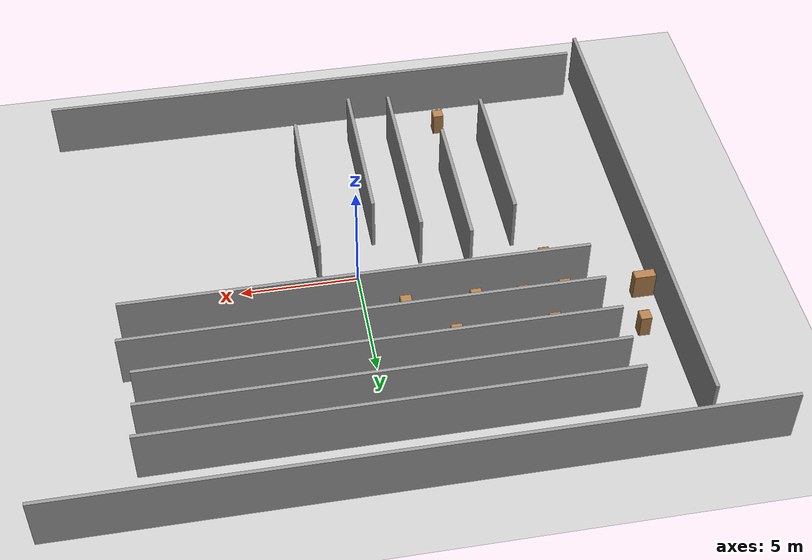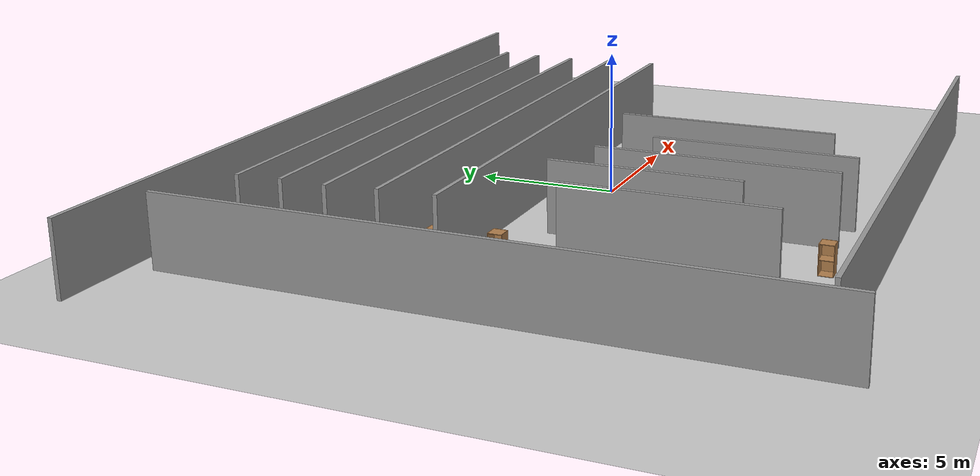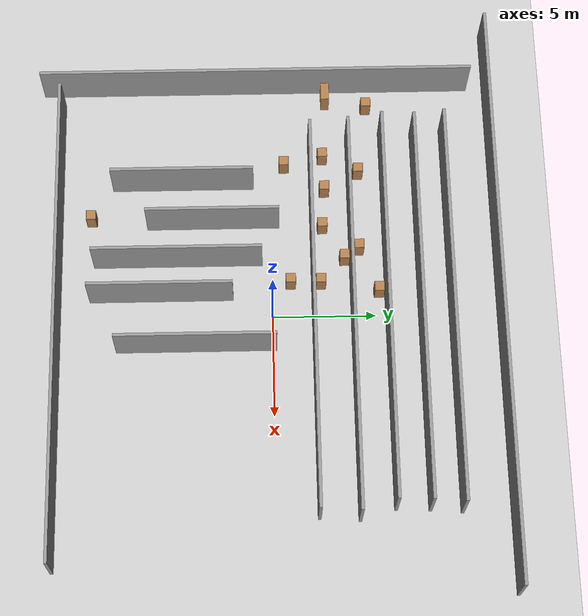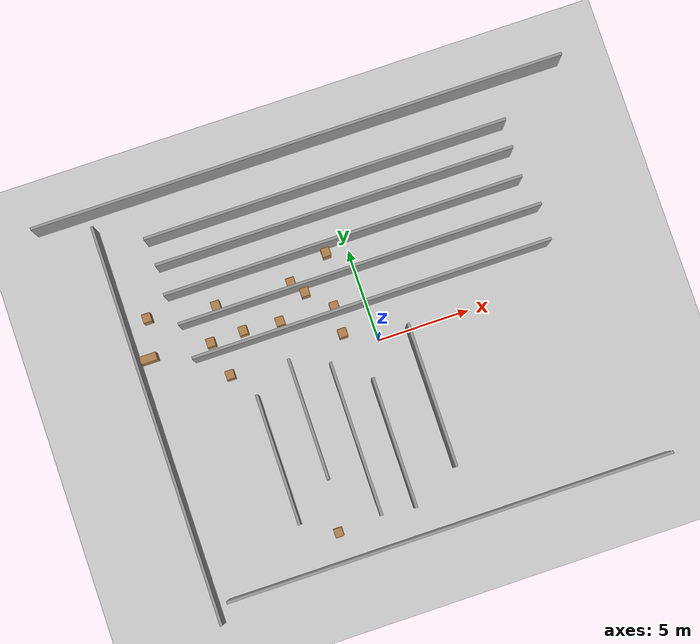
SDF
<sdf version="1.6">
 <world name="default">
  <model name="ground_plane">
   <static>1</static>
   <link name="link">
    <collision name="collision">
     <geometry><plane><normal>0 0 1</normal><size>100 100</size></plane></geometry>
     <surface><friction><ode><mu>100</mu><mu2>50</mu2></ode></friction></surface>
    </collision>
    <visual name="visual">
     <cast_shadows>0</cast_shadows>
     <geometry><plane><normal>0 0 1</normal><size>100 100</size></plane></geometry>
     <material>
      <script><uri>file://media/materials/scripts/gazebo.material</uri><name>Gazebo/Grey</name></script>
     </material>
    </visual>
   </link>
  </model>
  <model name="room18">
   <pose>-0.789818 -0.171226 0 0 -0 0</pose>
   <link name="Wall_0">
    <collision name="Wall_0_Collision">
     <geometry><box><size>29 0.15 2.5</size></box></geometry>
     <pose>0 0 1.25 0 -0 0</pose>
    </collision>
    <visual name="Wall_0_Visual">
     <pose>0 0 1.25 0 -0 0</pose>
     <geometry><box><size>29 0.15 2.5</size></box></geometry>
     <material>
      <script><uri>file://media/materials/scripts/gazebo.material</uri><name>Gazebo/Grey</name></script>
      <ambient>1 1 1 1</ambient>
     </material>
     <meta><layer>0</layer></meta>
    </visual>
    <pose>0 11.1538 0 0 -0 0</pose>
   </link>
   <link name="Wall_12">
    <collision name="Wall_12_Collision">
     <geometry><box><size>19.5 0.15 2.5</size></box></geometry>
     <pose>0 0 1.25 0 -0 0</pose>
    </collision>
    <visual name="Wall_12_Visual">
     <pose>0 0 1.25 0 -0 0</pose>
     <geometry><box><size>19.5 0.15 2.5</size></box></geometry>
     <material>
      <script><uri>file://media/materials/scripts/gazebo.material</uri><name>Gazebo/Grey</name></script>
      <ambient>1 1 1 1</ambient>
     </material>
     <meta><layer>0</layer></meta>
    </visual>
    <pose>0.703041 5.72736 0 0 -0 0</pose>
   </link>
   <link name="Wall_14">
    <collision name="Wall_14_Collision">
     <geometry><box><size>19.75 0.15 2.5</size></box></geometry>
     <pose>0 0 1.25 0 -0 0</pose>
    </collision>
    <visual name="Wall_14_Visual">
     <pose>0 0 1.25 0 -0 0</pose>
     <geometry><box><size>19.75 0.15 2.5</size></box></geometry>
     <material>
      <script><uri>file://media/materials/scripts/gazebo.material</uri><name>Gazebo/Grey</name></script>
      <ambient>1 1 1 1</ambient>
     </material>
     <meta><layer>0</layer></meta>
    </visual>
    <pose>1.06744 4.05155 0 0 -0 0</pose>
   </link>
   <link name="Wall_16">
    <collision name="Wall_16_Collision">
     <geometry><box><size>19.5 0.15 2.5</size></box></geometry>
     <pose>0 0 1.25 0 -0 0</pose>
    </collision>
    <visual name="Wall_16_Visual">
     <pose>0 0 1.25 0 -0 0</pose>
     <geometry><box><size>19.5 0.15 2.5</size></box></geometry>
     <material>
      <script><uri>file://media/materials/scripts/gazebo.material</uri><name>Gazebo/Grey</name></script>
      <ambient>1 1 1 1</ambient>
     </material>
     <meta><layer>0</layer></meta>
    </visual>
    <pose>1.07544 2.16294 0 0 -0 0</pose>
   </link>
   <link name="Wall_18">
    <collision name="Wall_18_Collision">
     <geometry><box><size>7 0.15 2.5</size></box></geometry>
     <pose>0 0 1.25 0 -0 0</pose>
    </collision>
    <visual name="Wall_18_Visual">
     <pose>0 0 1.25 0 -0 0</pose>
     <geometry><box><size>7 0.15 2.5</size></box></geometry>
     <material>
      <script><uri>file://media/materials/scripts/gazebo.material</uri><name>Gazebo/Grey</name></script>
      <ambient>1 1 1 1</ambient>
     </material>
     <meta><layer>0</layer></meta>
    </visual>
    <pose>-6.12574 -4.16148 0 0 -0 -1.5708</pose>
   </link>
   <link name="Wall_20">
    <collision name="Wall_20_Collision">
     <geometry><box><size>6.5 0.15 2.5</size></box></geometry>
     <pose>0 0 1.25 0 -0 0</pose>
    </collision>
    <visual name="Wall_20_Visual">
     <pose>0 0 1.25 0 -0 0</pose>
     <geometry><box><size>6.5 0.15 2.5</size></box></geometry>
     <material>
      <script><uri>file://media/materials/scripts/gazebo.material</uri><name>Gazebo/Grey</name></script>
      <ambient>1 1 1 1</ambient>
     </material>
     <meta><layer>0</layer></meta>
    </visual>
    <pose>-3.99772 -2.68788 0 0 -0 -1.5708</pose>
   </link>
   <link name="Wall_22">
    <collision name="Wall_22_Collision">
     <geometry><box><size>8.25 0.15 2.5</size></box></geometry>
     <pose>0 0 1.25 0 -0 0</pose>
    </collision>
    <visual name="Wall_22_Visual">
     <pose>0 0 1.25 0 -0 0</pose>
     <geometry><box><size>8.25 0.15 2.5</size></box></geometry>
     <material>
      <script><uri>file://media/materials/scripts/gazebo.material</uri><name>Gazebo/Grey</name></script>
      <ambient>1 1 1 1</ambient>
     </material>
     <meta><layer>0</layer></meta>
    </visual>
    <pose>-2.00271 -4.41408 0 0 -0 -1.5708</pose>
   </link>
   <link name="Wall_24">
    <collision name="Wall_24_Collision">
     <geometry><box><size>7 0.15 2.5</size></box></geometry>
     <pose>0 0 1.25 0 -0 0</pose>
    </collision>
    <visual name="Wall_24_Visual">
     <pose>0 0 1.25 0 -0 0</pose>
     <geometry><box><size>7 0.15 2.5</size></box></geometry>
     <material>
      <script><uri>file://media/materials/scripts/gazebo.material</uri><name>Gazebo/Grey</name></script>
      <ambient>1 1 1 1</ambient>
     </material>
     <meta><layer>0</layer></meta>
    </visual>
    <pose>-0.193893 -5.22549 0 0 -0 -1.5708</pose>
   </link>
   <link name="Wall_26">
    <collision name="Wall_26_Collision">
     <geometry><box><size>7.75 0.15 2.5</size></box></geometry>
     <pose>0 0 1.25 0 -0 0</pose>
    </collision>
    <visual name="Wall_26_Visual">
     <pose>0 0 1.25 0 -0 0</pose>
     <geometry><box><size>7.75 0.15 2.5</size></box></geometry>
     <material>
      <script><uri>file://media/materials/scripts/gazebo.material</uri><name>Gazebo/Grey</name></script>
      <ambient>1 1 1 1</ambient>
     </material>
     <meta><layer>0</layer></meta>
    </visual>
    <pose>2.41293 -3.52568 0 0 -0 -1.5708</pose>
   </link>
   <link name="Wall_3">
    <collision name="Wall_3_Collision">
     <geometry><box><size>21.5 0.15 2.5</size></box></geometry>
     <pose>0 0 1.25 0 -0 0</pose>
    </collision>
    <visual name="Wall_3_Visual">
     <pose>0 0 1.25 0 -0 0</pose>
     <geometry><box><size>21.5 0.15 2.5</size></box></geometry>
     <material>
      <script><uri>file://media/materials/scripts/gazebo.material</uri><name>Gazebo/Grey</name></script>
      <ambient>1 1 1 1</ambient>
     </material>
     <meta><layer>0</layer></meta>
    </visual>
    <pose>-11.4724 -0.478803 0 0 -0 -1.5708</pose>
   </link>
   <link name="Wall_5">
    <collision name="Wall_5_Collision">
     <geometry><box><size>24 0.15 2.5</size></box></geometry>
     <pose>0 0 1.25 0 -0 0</pose>
    </collision>
    <visual name="Wall_5_Visual">
     <pose>0 0 1.25 0 -0 0</pose>
     <geometry><box><size>24 0.15 2.5</size></box></geometry>
     <material>
      <script><uri>file://media/materials/scripts/gazebo.material</uri><name>Gazebo/Grey</name></script>
      <ambient>1 1 1 1</ambient>
     </material>
     <meta><layer>0</layer></meta>
    </visual>
    <pose>1.14423 -10.2062 0 0 -0 0</pose>
   </link>
   <link name="Wall_7">
    <collision name="Wall_7_Collision">
     <geometry><box><size>19.75 0.15 2.5</size></box></geometry>
     <pose>0 0 1.25 0 -0 0</pose>
    </collision>
    <visual name="Wall_7_Visual">
     <pose>0 0 1.25 0 -0 0</pose>
     <geometry><box><size>19.75 0.15 2.5</size></box></geometry>
     <material>
      <script><uri>file://media/materials/scripts/gazebo.material</uri><name>Gazebo/Grey</name></script>
      <ambient>1 1 1 1</ambient>
     </material>
     <meta><layer>0</layer></meta>
    </visual>
    <pose>0.74824 8.81299 0 0 -0 0</pose>
   </link>
   <link name="Wall_9">
    <collision name="Wall_9_Collision">
     <geometry><box><size>19.5 0.15 2.5</size></box></geometry>
     <pose>0 0 1.25 0 -0 0</pose>
    </collision>
    <visual name="Wall_9_Visual">
     <pose>0 0 1.25 0 -0 0</pose>
     <geometry><box><size>19.5 0.15 2.5</size></box></geometry>
     <material>
      <script><uri>file://media/materials/scripts/gazebo.material</uri><name>Gazebo/Grey</name></script>
      <ambient>1 1 1 1</ambient>
     </material>
     <meta><layer>0</layer></meta>
    </visual>
    <pose>0.756241 7.32338 0 0 -0 0</pose>
   </link>
   <static>1</static>
  </model>
  <model name="cabinet_28">
   <static>1</static>
   <link name="cabinet_bottom_plate">
    <inertial>
     <pose>0 0 -1 0 -0 0</pose>
     <inertia><ixx>2.05</ixx><ixy>0</ixy><ixz>0</ixz><iyy>2.05</iyy><iyz>0</iyz><izz>2.05</izz></inertia>
     <mass>25</mass>
    </inertial>
    <collision name="cabinet_bottom_plate_geom">
     <pose>0 0 0.01 0 -0 0</pose>
     <geometry><box><size>0.45 0.45 0.02</size></box></geometry>
    </collision>
    <visual name="cabinet_bottom_plate_geom_visual">
     <pose>0 0 0.01 0 -0 0</pose>
     <geometry><box><size>0.45 0.45 0.02</size></box></geometry>
     <material>
      <script><uri>file://media/materials/scripts/gazebo.material</uri><name>Gazebo/Wood</name></script>
     </material>
    </visual>
    <collision name="cabinet_bottom_plate_geom_cabinet_back_plate">
     <pose>0.235 0 0.51 0 -0 0</pose>
     <geometry><box><size>0.02 0.45 1.02</size></box></geometry>
    </collision>
    <visual name="cabinet_bottom_plate_geom_cabinet_back_plate_visual">
     <pose>0.235 0 0.51 0 -0 0</pose>
     <geometry><box><size>0.02 0.45 1.02</size></box></geometry>
     <material>
      <script><uri>file://media/materials/scripts/gazebo.material</uri><name>Gazebo/Wood</name></script>
     </material>
    </visual>
    <collision name="cabinet_bottom_plate_geom_cabinet_left_plate">
     <pose>0 0.235 0.51 0 -0 0</pose>
     <geometry><box><size>0.45 0.02 1.02</size></box></geometry>
    </collision>
    <visual name="cabinet_bottom_plate_geom_cabinet_left_plate_visual">
     <pose>0 0.235 0.51 0 -0 0</pose>
     <geometry><box><size>0.45 0.02 1.02</size></box></geometry>
     <material>
      <script><uri>file://media/materials/scripts/gazebo.material</uri><name>Gazebo/Wood</name></script>
     </material>
    </visual>
    <collision name="cabinet_bottom_plate_geom_cabinet_middle_plate">
     <pose>0 0 0.51 0 -0 0</pose>
     <geometry><box><size>0.45 0.45 0.02</size></box></geometry>
    </collision>
    <visual name="cabinet_bottom_plate_geom_cabinet_middle_plate_visual">
     <pose>0 0 0.51 0 -0 0</pose>
     <geometry><box><size>0.45 0.45 0.02</size></box></geometry>
     <material>
      <script><uri>file://media/materials/scripts/gazebo.material</uri><name>Gazebo/Wood</name></script>
     </material>
    </visual>
    <collision name="cabinet_bottom_plate_geom_cabinet_right_plate">
     <pose>0 -0.235 0.51 0 -0 0</pose>
     <geometry><box><size>0.45 0.02 1.02</size></box></geometry>
    </collision>
    <visual name="cabinet_bottom_plate_geom_cabinet_right_plate_visual">
     <pose>0 -0.235 0.51 0 -0 0</pose>
     <geometry><box><size>0.45 0.02 1.02</size></box></geometry>
     <material>
      <script><uri>file://media/materials/scripts/gazebo.material</uri><name>Gazebo/Wood</name></script>
     </material>
    </visual>
    <collision name="cabinet_bottom_plate_geom_cabinet_top_plate">
     <pose>0 0 1.01 0 -0 0</pose>
     <geometry><box><size>0.45 0.45 0.02</size></box></geometry>
    </collision>
    <visual name="cabinet_bottom_plate_geom_cabinet_top_plate_visual">
     <pose>0 0 1.01 0 -0 0</pose>
     <geometry><box><size>0.45 0.45 0.02</size></box></geometry>
     <material>
      <script><uri>file://media/materials/scripts/gazebo.material</uri><name>Gazebo/Wood</name></script>
     </material>
    </visual>
   </link>
   <pose>-1.18144 5.19767 0 0 -0 0</pose>
  </model>
  <model name="cabinet_29">
   <static>1</static>
   <link name="cabinet_bottom_plate">
    <inertial>
     <pose>0 0 -1 0 -0 0</pose>
     <inertia><ixx>2.05</ixx><ixy>0</ixy><ixz>0</ixz><iyy>2.05</iyy><iyz>0</iyz><izz>2.05</izz></inertia>
     <mass>25</mass>
    </inertial>
    <collision name="cabinet_bottom_plate_geom">
     <pose>0 0 0.01 0 -0 0</pose>
     <geometry><box><size>0.45 0.45 0.02</size></box></geometry>
    </collision>
    <visual name="cabinet_bottom_plate_geom_visual">
     <pose>0 0 0.01 0 -0 0</pose>
     <geometry><box><size>0.45 0.45 0.02</size></box></geometry>
     <material>
      <script><uri>file://media/materials/scripts/gazebo.material</uri><name>Gazebo/Wood</name></script>
     </material>
    </visual>
    <collision name="cabinet_bottom_plate_geom_cabinet_back_plate">
     <pose>0.235 0 0.51 0 -0 0</pose>
     <geometry><box><size>0.02 0.45 1.02</size></box></geometry>
    </collision>
    <visual name="cabinet_bottom_plate_geom_cabinet_back_plate_visual">
     <pose>0.235 0 0.51 0 -0 0</pose>
     <geometry><box><size>0.02 0.45 1.02</size></box></geometry>
     <material>
      <script><uri>file://media/materials/scripts/gazebo.material</uri><name>Gazebo/Wood</name></script>
     </material>
    </visual>
    <collision name="cabinet_bottom_plate_geom_cabinet_left_plate">
     <pose>0 0.235 0.51 0 -0 0</pose>
     <geometry><box><size>0.45 0.02 1.02</size></box></geometry>
    </collision>
    <visual name="cabinet_bottom_plate_geom_cabinet_left_plate_visual">
     <pose>0 0.235 0.51 0 -0 0</pose>
     <geometry><box><size>0.45 0.02 1.02</size></box></geometry>
     <material>
      <script><uri>file://media/materials/scripts/gazebo.material</uri><name>Gazebo/Wood</name></script>
     </material>
    </visual>
    <collision name="cabinet_bottom_plate_geom_cabinet_middle_plate">
     <pose>0 0 0.51 0 -0 0</pose>
     <geometry><box><size>0.45 0.45 0.02</size></box></geometry>
    </collision>
    <visual name="cabinet_bottom_plate_geom_cabinet_middle_plate_visual">
     <pose>0 0 0.51 0 -0 0</pose>
     <geometry><box><size>0.45 0.45 0.02</size></box></geometry>
     <material>
      <script><uri>file://media/materials/scripts/gazebo.material</uri><name>Gazebo/Wood</name></script>
     </material>
    </visual>
    <collision name="cabinet_bottom_plate_geom_cabinet_right_plate">
     <pose>0 -0.235 0.51 0 -0 0</pose>
     <geometry><box><size>0.45 0.02 1.02</size></box></geometry>
    </collision>
    <visual name="cabinet_bottom_plate_geom_cabinet_right_plate_visual">
     <pose>0 -0.235 0.51 0 -0 0</pose>
     <geometry><box><size>0.45 0.02 1.02</size></box></geometry>
     <material>
      <script><uri>file://media/materials/scripts/gazebo.material</uri><name>Gazebo/Wood</name></script>
     </material>
    </visual>
    <collision name="cabinet_bottom_plate_geom_cabinet_top_plate">
     <pose>0 0 1.01 0 -0 0</pose>
     <geometry><box><size>0.45 0.45 0.02</size></box></geometry>
    </collision>
    <visual name="cabinet_bottom_plate_geom_cabinet_top_plate_visual">
     <pose>0 0 1.01 0 -0 0</pose>
     <geometry><box><size>0.45 0.45 0.02</size></box></geometry>
     <material>
      <script><uri>file://media/materials/scripts/gazebo.material</uri><name>Gazebo/Wood</name></script>
     </material>
    </visual>
   </link>
   <pose>-3.42618 4.28544 0 0 -0 0</pose>
  </model>
  <model name="cabinet_31">
   <static>1</static>
   <link name="cabinet_bottom_plate">
    <inertial>
     <pose>0 0 -1 0 -0 0</pose>
     <inertia><ixx>2.05</ixx><ixy>0</ixy><ixz>0</ixz><iyy>2.05</iyy><iyz>0</iyz><izz>2.05</izz></inertia>
     <mass>25</mass>
    </inertial>
    <collision name="cabinet_bottom_plate_geom">
     <pose>0 0 0.01 0 -0 0</pose>
     <geometry><box><size>0.45 0.45 0.02</size></box></geometry>
    </collision>
    <visual name="cabinet_bottom_plate_geom_visual">
     <pose>0 0 0.01 0 -0 0</pose>
     <geometry><box><size>0.45 0.45 0.02</size></box></geometry>
     <material>
      <script><uri>file://media/materials/scripts/gazebo.material</uri><name>Gazebo/Wood</name></script>
     </material>
    </visual>
    <collision name="cabinet_bottom_plate_geom_cabinet_back_plate">
     <pose>0.235 0 0.51 0 -0 0</pose>
     <geometry><box><size>0.02 0.45 1.02</size></box></geometry>
    </collision>
    <visual name="cabinet_bottom_plate_geom_cabinet_back_plate_visual">
     <pose>0.235 0 0.51 0 -0 0</pose>
     <geometry><box><size>0.02 0.45 1.02</size></box></geometry>
     <material>
      <script><uri>file://media/materials/scripts/gazebo.material</uri><name>Gazebo/Wood</name></script>
     </material>
    </visual>
    <collision name="cabinet_bottom_plate_geom_cabinet_left_plate">
     <pose>0 0.235 0.51 0 -0 0</pose>
     <geometry><box><size>0.45 0.02 1.02</size></box></geometry>
    </collision>
    <visual name="cabinet_bottom_plate_geom_cabinet_left_plate_visual">
     <pose>0 0.235 0.51 0 -0 0</pose>
     <geometry><box><size>0.45 0.02 1.02</size></box></geometry>
     <material>
      <script><uri>file://media/materials/scripts/gazebo.material</uri><name>Gazebo/Wood</name></script>
     </material>
    </visual>
    <collision name="cabinet_bottom_plate_geom_cabinet_middle_plate">
     <pose>0 0 0.51 0 -0 0</pose>
     <geometry><box><size>0.45 0.45 0.02</size></box></geometry>
    </collision>
    <visual name="cabinet_bottom_plate_geom_cabinet_middle_plate_visual">
     <pose>0 0 0.51 0 -0 0</pose>
     <geometry><box><size>0.45 0.45 0.02</size></box></geometry>
     <material>
      <script><uri>file://media/materials/scripts/gazebo.material</uri><name>Gazebo/Wood</name></script>
     </material>
    </visual>
    <collision name="cabinet_bottom_plate_geom_cabinet_right_plate">
     <pose>0 -0.235 0.51 0 -0 0</pose>
     <geometry><box><size>0.45 0.02 1.02</size></box></geometry>
    </collision>
    <visual name="cabinet_bottom_plate_geom_cabinet_right_plate_visual">
     <pose>0 -0.235 0.51 0 -0 0</pose>
     <geometry><box><size>0.45 0.02 1.02</size></box></geometry>
     <material>
      <script><uri>file://media/materials/scripts/gazebo.material</uri><name>Gazebo/Wood</name></script>
     </material>
    </visual>
    <collision name="cabinet_bottom_plate_geom_cabinet_top_plate">
     <pose>0 0 1.01 0 -0 0</pose>
     <geometry><box><size>0.45 0.45 0.02</size></box></geometry>
    </collision>
    <visual name="cabinet_bottom_plate_geom_cabinet_top_plate_visual">
     <pose>0 0 1.01 0 -0 0</pose>
     <geometry><box><size>0.45 0.45 0.02</size></box></geometry>
     <material>
      <script><uri>file://media/materials/scripts/gazebo.material</uri><name>Gazebo/Wood</name></script>
     </material>
    </visual>
   </link>
   <pose>-7.52093 4.36774 0 0 -0 0</pose>
  </model>
  <model name="cabinet_37">
   <static>1</static>
   <link name="cabinet_bottom_plate">
    <inertial>
     <pose>0 0 -1 0 -0 0</pose>
     <inertia><ixx>2.05</ixx><ixy>0</ixy><ixz>0</ixz><iyy>2.05</iyy><iyz>0</iyz><izz>2.05</izz></inertia>
     <mass>25</mass>
    </inertial>
    <collision name="cabinet_bottom_plate_geom">
     <pose>0 0 0.01 0 -0 0</pose>
     <geometry><box><size>0.45 0.45 0.02</size></box></geometry>
    </collision>
    <visual name="cabinet_bottom_plate_geom_visual">
     <pose>0 0 0.01 0 -0 0</pose>
     <geometry><box><size>0.45 0.45 0.02</size></box></geometry>
     <material>
      <script><uri>file://media/materials/scripts/gazebo.material</uri><name>Gazebo/Wood</name></script>
     </material>
    </visual>
    <collision name="cabinet_bottom_plate_geom_cabinet_back_plate">
     <pose>0.235 0 0.51 0 -0 0</pose>
     <geometry><box><size>0.02 0.45 1.02</size></box></geometry>
    </collision>
    <visual name="cabinet_bottom_plate_geom_cabinet_back_plate_visual">
     <pose>0.235 0 0.51 0 -0 0</pose>
     <geometry><box><size>0.02 0.45 1.02</size></box></geometry>
     <material>
      <script><uri>file://media/materials/scripts/gazebo.material</uri><name>Gazebo/Wood</name></script>
     </material>
    </visual>
    <collision name="cabinet_bottom_plate_geom_cabinet_left_plate">
     <pose>0 0.235 0.51 0 -0 0</pose>
     <geometry><box><size>0.45 0.02 1.02</size></box></geometry>
    </collision>
    <visual name="cabinet_bottom_plate_geom_cabinet_left_plate_visual">
     <pose>0 0.235 0.51 0 -0 0</pose>
     <geometry><box><size>0.45 0.02 1.02</size></box></geometry>
     <material>
      <script><uri>file://media/materials/scripts/gazebo.material</uri><name>Gazebo/Wood</name></script>
     </material>
    </visual>
    <collision name="cabinet_bottom_plate_geom_cabinet_middle_plate">
     <pose>0 0 0.51 0 -0 0</pose>
     <geometry><box><size>0.45 0.45 0.02</size></box></geometry>
    </collision>
    <visual name="cabinet_bottom_plate_geom_cabinet_middle_plate_visual">
     <pose>0 0 0.51 0 -0 0</pose>
     <geometry><box><size>0.45 0.45 0.02</size></box></geometry>
     <material>
      <script><uri>file://media/materials/scripts/gazebo.material</uri><name>Gazebo/Wood</name></script>
     </material>
    </visual>
    <collision name="cabinet_bottom_plate_geom_cabinet_right_plate">
     <pose>0 -0.235 0.51 0 -0 0</pose>
     <geometry><box><size>0.45 0.02 1.02</size></box></geometry>
    </collision>
    <visual name="cabinet_bottom_plate_geom_cabinet_right_plate_visual">
     <pose>0 -0.235 0.51 0 -0 0</pose>
     <geometry><box><size>0.45 0.02 1.02</size></box></geometry>
     <material>
      <script><uri>file://media/materials/scripts/gazebo.material</uri><name>Gazebo/Wood</name></script>
     </material>
    </visual>
    <collision name="cabinet_bottom_plate_geom_cabinet_top_plate">
     <pose>0 0 1.01 0 -0 0</pose>
     <geometry><box><size>0.45 0.45 0.02</size></box></geometry>
    </collision>
    <visual name="cabinet_bottom_plate_geom_cabinet_top_plate_visual">
     <pose>0 0 1.01 0 -0 0</pose>
     <geometry><box><size>0.45 0.45 0.02</size></box></geometry>
     <material>
      <script><uri>file://media/materials/scripts/gazebo.material</uri><name>Gazebo/Wood</name></script>
     </material>
    </visual>
   </link>
   <pose>-1.65894 2.37493 0 0 -0 0</pose>
  </model>
  <model name="cabinet_38">
   <static>1</static>
   <link name="cabinet_bottom_plate">
    <inertial>
     <pose>0 0 -1 0 -0 0</pose>
     <inertia><ixx>2.05</ixx><ixy>0</ixy><ixz>0</ixz><iyy>2.05</iyy><iyz>0</iyz><izz>2.05</izz></inertia>
     <mass>25</mass>
    </inertial>
    <collision name="cabinet_bottom_plate_geom">
     <pose>0 0 0.01 0 -0 0</pose>
     <geometry><box><size>0.45 0.45 0.02</size></box></geometry>
    </collision>
    <visual name="cabinet_bottom_plate_geom_visual">
     <pose>0 0 0.01 0 -0 0</pose>
     <geometry><box><size>0.45 0.45 0.02</size></box></geometry>
     <material>
      <script><uri>file://media/materials/scripts/gazebo.material</uri><name>Gazebo/Wood</name></script>
     </material>
    </visual>
    <collision name="cabinet_bottom_plate_geom_cabinet_back_plate">
     <pose>0.235 0 0.51 0 -0 0</pose>
     <geometry><box><size>0.02 0.45 1.02</size></box></geometry>
    </collision>
    <visual name="cabinet_bottom_plate_geom_cabinet_back_plate_visual">
     <pose>0.235 0 0.51 0 -0 0</pose>
     <geometry><box><size>0.02 0.45 1.02</size></box></geometry>
     <material>
      <script><uri>file://media/materials/scripts/gazebo.material</uri><name>Gazebo/Wood</name></script>
     </material>
    </visual>
    <collision name="cabinet_bottom_plate_geom_cabinet_left_plate">
     <pose>0 0.235 0.51 0 -0 0</pose>
     <geometry><box><size>0.45 0.02 1.02</size></box></geometry>
    </collision>
    <visual name="cabinet_bottom_plate_geom_cabinet_left_plate_visual">
     <pose>0 0.235 0.51 0 -0 0</pose>
     <geometry><box><size>0.45 0.02 1.02</size></box></geometry>
     <material>
      <script><uri>file://media/materials/scripts/gazebo.material</uri><name>Gazebo/Wood</name></script>
     </material>
    </visual>
    <collision name="cabinet_bottom_plate_geom_cabinet_middle_plate">
     <pose>0 0 0.51 0 -0 0</pose>
     <geometry><box><size>0.45 0.45 0.02</size></box></geometry>
    </collision>
    <visual name="cabinet_bottom_plate_geom_cabinet_middle_plate_visual">
     <pose>0 0 0.51 0 -0 0</pose>
     <geometry><box><size>0.45 0.45 0.02</size></box></geometry>
     <material>
      <script><uri>file://media/materials/scripts/gazebo.material</uri><name>Gazebo/Wood</name></script>
     </material>
    </visual>
    <collision name="cabinet_bottom_plate_geom_cabinet_right_plate">
     <pose>0 -0.235 0.51 0 -0 0</pose>
     <geometry><box><size>0.45 0.02 1.02</size></box></geometry>
    </collision>
    <visual name="cabinet_bottom_plate_geom_cabinet_right_plate_visual">
     <pose>0 -0.235 0.51 0 -0 0</pose>
     <geometry><box><size>0.45 0.02 1.02</size></box></geometry>
     <material>
      <script><uri>file://media/materials/scripts/gazebo.material</uri><name>Gazebo/Wood</name></script>
     </material>
    </visual>
    <collision name="cabinet_bottom_plate_geom_cabinet_top_plate">
     <pose>0 0 1.01 0 -0 0</pose>
     <geometry><box><size>0.45 0.45 0.02</size></box></geometry>
    </collision>
    <visual name="cabinet_bottom_plate_geom_cabinet_top_plate_visual">
     <pose>0 0 1.01 0 -0 0</pose>
     <geometry><box><size>0.45 0.45 0.02</size></box></geometry>
     <material>
      <script><uri>file://media/materials/scripts/gazebo.material</uri><name>Gazebo/Wood</name></script>
     </material>
    </visual>
   </link>
   <pose>-2.89348 3.56577 0 0 -0 0</pose>
  </model>
  <model name="cabinet_39">
   <static>1</static>
   <link name="cabinet_bottom_plate">
    <inertial>
     <pose>0 0 -1 0 -0 0</pose>
     <inertia><ixx>2.05</ixx><ixy>0</ixy><ixz>0</ixz><iyy>2.05</iyy><iyz>0</iyz><izz>2.05</izz></inertia>
     <mass>25</mass>
    </inertial>
    <collision name="cabinet_bottom_plate_geom">
     <pose>0 0 0.01 0 -0 0</pose>
     <geometry><box><size>0.45 0.45 0.02</size></box></geometry>
    </collision>
    <visual name="cabinet_bottom_plate_geom_visual">
     <pose>0 0 0.01 0 -0 0</pose>
     <geometry><box><size>0.45 0.45 0.02</size></box></geometry>
     <material>
      <script><uri>file://media/materials/scripts/gazebo.material</uri><name>Gazebo/Wood</name></script>
     </material>
    </visual>
    <collision name="cabinet_bottom_plate_geom_cabinet_back_plate">
     <pose>0.235 0 0.51 0 -0 0</pose>
     <geometry><box><size>0.02 0.45 1.02</size></box></geometry>
    </collision>
    <visual name="cabinet_bottom_plate_geom_cabinet_back_plate_visual">
     <pose>0.235 0 0.51 0 -0 0</pose>
     <geometry><box><size>0.02 0.45 1.02</size></box></geometry>
     <material>
      <script><uri>file://media/materials/scripts/gazebo.material</uri><name>Gazebo/Wood</name></script>
     </material>
    </visual>
    <collision name="cabinet_bottom_plate_geom_cabinet_left_plate">
     <pose>0 0.235 0.51 0 -0 0</pose>
     <geometry><box><size>0.45 0.02 1.02</size></box></geometry>
    </collision>
    <visual name="cabinet_bottom_plate_geom_cabinet_left_plate_visual">
     <pose>0 0.235 0.51 0 -0 0</pose>
     <geometry><box><size>0.45 0.02 1.02</size></box></geometry>
     <material>
      <script><uri>file://media/materials/scripts/gazebo.material</uri><name>Gazebo/Wood</name></script>
     </material>
    </visual>
    <collision name="cabinet_bottom_plate_geom_cabinet_middle_plate">
     <pose>0 0 0.51 0 -0 0</pose>
     <geometry><box><size>0.45 0.45 0.02</size></box></geometry>
    </collision>
    <visual name="cabinet_bottom_plate_geom_cabinet_middle_plate_visual">
     <pose>0 0 0.51 0 -0 0</pose>
     <geometry><box><size>0.45 0.45 0.02</size></box></geometry>
     <material>
      <script><uri>file://media/materials/scripts/gazebo.material</uri><name>Gazebo/Wood</name></script>
     </material>
    </visual>
    <collision name="cabinet_bottom_plate_geom_cabinet_right_plate">
     <pose>0 -0.235 0.51 0 -0 0</pose>
     <geometry><box><size>0.45 0.02 1.02</size></box></geometry>
    </collision>
    <visual name="cabinet_bottom_plate_geom_cabinet_right_plate_visual">
     <pose>0 -0.235 0.51 0 -0 0</pose>
     <geometry><box><size>0.45 0.02 1.02</size></box></geometry>
     <material>
      <script><uri>file://media/materials/scripts/gazebo.material</uri><name>Gazebo/Wood</name></script>
     </material>
    </visual>
    <collision name="cabinet_bottom_plate_geom_cabinet_top_plate">
     <pose>0 0 1.01 0 -0 0</pose>
     <geometry><box><size>0.45 0.45 0.02</size></box></geometry>
    </collision>
    <visual name="cabinet_bottom_plate_geom_cabinet_top_plate_visual">
     <pose>0 0 1.01 0 -0 0</pose>
     <geometry><box><size>0.45 0.45 0.02</size></box></geometry>
     <material>
      <script><uri>file://media/materials/scripts/gazebo.material</uri><name>Gazebo/Wood</name></script>
     </material>
    </visual>
   </link>
   <pose>-4.59943 2.52278 0 0 -0 0</pose>
  </model>
  <model name="cabinet_40">
   <static>1</static>
   <link name="cabinet_bottom_plate">
    <inertial>
     <pose>0 0 -1 0 -0 0</pose>
     <inertia><ixx>2.05</ixx><ixy>0</ixy><ixz>0</ixz><iyy>2.05</iyy><iyz>0</iyz><izz>2.05</izz></inertia>
     <mass>25</mass>
    </inertial>
    <collision name="cabinet_bottom_plate_geom">
     <pose>0 0 0.01 0 -0 0</pose>
     <geometry><box><size>0.45 0.45 0.02</size></box></geometry>
    </collision>
    <visual name="cabinet_bottom_plate_geom_visual">
     <pose>0 0 0.01 0 -0 0</pose>
     <geometry><box><size>0.45 0.45 0.02</size></box></geometry>
     <material>
      <script><uri>file://media/materials/scripts/gazebo.material</uri><name>Gazebo/Wood</name></script>
     </material>
    </visual>
    <collision name="cabinet_bottom_plate_geom_cabinet_back_plate">
     <pose>0.235 0 0.51 0 -0 0</pose>
     <geometry><box><size>0.02 0.45 1.02</size></box></geometry>
    </collision>
    <visual name="cabinet_bottom_plate_geom_cabinet_back_plate_visual">
     <pose>0.235 0 0.51 0 -0 0</pose>
     <geometry><box><size>0.02 0.45 1.02</size></box></geometry>
     <material>
      <script><uri>file://media/materials/scripts/gazebo.material</uri><name>Gazebo/Wood</name></script>
     </material>
    </visual>
    <collision name="cabinet_bottom_plate_geom_cabinet_left_plate">
     <pose>0 0.235 0.51 0 -0 0</pose>
     <geometry><box><size>0.45 0.02 1.02</size></box></geometry>
    </collision>
    <visual name="cabinet_bottom_plate_geom_cabinet_left_plate_visual">
     <pose>0 0.235 0.51 0 -0 0</pose>
     <geometry><box><size>0.45 0.02 1.02</size></box></geometry>
     <material>
      <script><uri>file://media/materials/scripts/gazebo.material</uri><name>Gazebo/Wood</name></script>
     </material>
    </visual>
    <collision name="cabinet_bottom_plate_geom_cabinet_middle_plate">
     <pose>0 0 0.51 0 -0 0</pose>
     <geometry><box><size>0.45 0.45 0.02</size></box></geometry>
    </collision>
    <visual name="cabinet_bottom_plate_geom_cabinet_middle_plate_visual">
     <pose>0 0 0.51 0 -0 0</pose>
     <geometry><box><size>0.45 0.45 0.02</size></box></geometry>
     <material>
      <script><uri>file://media/materials/scripts/gazebo.material</uri><name>Gazebo/Wood</name></script>
     </material>
    </visual>
    <collision name="cabinet_bottom_plate_geom_cabinet_right_plate">
     <pose>0 -0.235 0.51 0 -0 0</pose>
     <geometry><box><size>0.45 0.02 1.02</size></box></geometry>
    </collision>
    <visual name="cabinet_bottom_plate_geom_cabinet_right_plate_visual">
     <pose>0 -0.235 0.51 0 -0 0</pose>
     <geometry><box><size>0.45 0.02 1.02</size></box></geometry>
     <material>
      <script><uri>file://media/materials/scripts/gazebo.material</uri><name>Gazebo/Wood</name></script>
     </material>
    </visual>
    <collision name="cabinet_bottom_plate_geom_cabinet_top_plate">
     <pose>0 0 1.01 0 -0 0</pose>
     <geometry><box><size>0.45 0.45 0.02</size></box></geometry>
    </collision>
    <visual name="cabinet_bottom_plate_geom_cabinet_top_plate_visual">
     <pose>0 0 1.01 0 -0 0</pose>
     <geometry><box><size>0.45 0.45 0.02</size></box></geometry>
     <material>
      <script><uri>file://media/materials/scripts/gazebo.material</uri><name>Gazebo/Wood</name></script>
     </material>
    </visual>
   </link>
   <pose>-6.57979 2.66888 0 0 -0 0</pose>
  </model>
  <model name="cabinet_41">
   <static>1</static>
   <link name="cabinet_bottom_plate">
    <inertial>
     <pose>0 0 -1 0 -0 0</pose>
     <inertia><ixx>2.05</ixx><ixy>0</ixy><ixz>0</ixz><iyy>2.05</iyy><iyz>0</iyz><izz>2.05</izz></inertia>
     <mass>25</mass>
    </inertial>
    <collision name="cabinet_bottom_plate_geom">
     <pose>0 0 0.01 0 -0 0</pose>
     <geometry><box><size>0.45 0.45 0.02</size></box></geometry>
    </collision>
    <visual name="cabinet_bottom_plate_geom_visual">
     <pose>0 0 0.01 0 -0 0</pose>
     <geometry><box><size>0.45 0.45 0.02</size></box></geometry>
     <material>
      <script><uri>file://media/materials/scripts/gazebo.material</uri><name>Gazebo/Wood</name></script>
     </material>
    </visual>
    <collision name="cabinet_bottom_plate_geom_cabinet_back_plate">
     <pose>0.235 0 0.51 0 -0 0</pose>
     <geometry><box><size>0.02 0.45 1.02</size></box></geometry>
    </collision>
    <visual name="cabinet_bottom_plate_geom_cabinet_back_plate_visual">
     <pose>0.235 0 0.51 0 -0 0</pose>
     <geometry><box><size>0.02 0.45 1.02</size></box></geometry>
     <material>
      <script><uri>file://media/materials/scripts/gazebo.material</uri><name>Gazebo/Wood</name></script>
     </material>
    </visual>
    <collision name="cabinet_bottom_plate_geom_cabinet_left_plate">
     <pose>0 0.235 0.51 0 -0 0</pose>
     <geometry><box><size>0.45 0.02 1.02</size></box></geometry>
    </collision>
    <visual name="cabinet_bottom_plate_geom_cabinet_left_plate_visual">
     <pose>0 0.235 0.51 0 -0 0</pose>
     <geometry><box><size>0.45 0.02 1.02</size></box></geometry>
     <material>
      <script><uri>file://media/materials/scripts/gazebo.material</uri><name>Gazebo/Wood</name></script>
     </material>
    </visual>
    <collision name="cabinet_bottom_plate_geom_cabinet_middle_plate">
     <pose>0 0 0.51 0 -0 0</pose>
     <geometry><box><size>0.45 0.45 0.02</size></box></geometry>
    </collision>
    <visual name="cabinet_bottom_plate_geom_cabinet_middle_plate_visual">
     <pose>0 0 0.51 0 -0 0</pose>
     <geometry><box><size>0.45 0.45 0.02</size></box></geometry>
     <material>
      <script><uri>file://media/materials/scripts/gazebo.material</uri><name>Gazebo/Wood</name></script>
     </material>
    </visual>
    <collision name="cabinet_bottom_plate_geom_cabinet_right_plate">
     <pose>0 -0.235 0.51 0 -0 0</pose>
     <geometry><box><size>0.45 0.02 1.02</size></box></geometry>
    </collision>
    <visual name="cabinet_bottom_plate_geom_cabinet_right_plate_visual">
     <pose>0 -0.235 0.51 0 -0 0</pose>
     <geometry><box><size>0.45 0.02 1.02</size></box></geometry>
     <material>
      <script><uri>file://media/materials/scripts/gazebo.material</uri><name>Gazebo/Wood</name></script>
     </material>
    </visual>
    <collision name="cabinet_bottom_plate_geom_cabinet_top_plate">
     <pose>0 0 1.01 0 -0 0</pose>
     <geometry><box><size>0.45 0.45 0.02</size></box></geometry>
    </collision>
    <visual name="cabinet_bottom_plate_geom_cabinet_top_plate_visual">
     <pose>0 0 1.01 0 -0 0</pose>
     <geometry><box><size>0.45 0.45 0.02</size></box></geometry>
     <material>
      <script><uri>file://media/materials/scripts/gazebo.material</uri><name>Gazebo/Wood</name></script>
     </material>
    </visual>
   </link>
   <pose>-8.37072 2.61226 0 0 -0 0</pose>
  </model>
  <model name="cabinet_43">
   <static>1</static>
   <link name="cabinet_bottom_plate">
    <inertial>
     <pose>0 0 -1 0 -0 0</pose>
     <inertia><ixx>2.05</ixx><ixy>0</ixy><ixz>0</ixz><iyy>2.05</iyy><iyz>0</iyz><izz>2.05</izz></inertia>
     <mass>25</mass>
    </inertial>
    <collision name="cabinet_bottom_plate_geom">
     <pose>0 0 0.01 0 -0 0</pose>
     <geometry><box><size>0.45 0.45 0.02</size></box></geometry>
    </collision>
    <visual name="cabinet_bottom_plate_geom_visual">
     <pose>0 0 0.01 0 -0 0</pose>
     <geometry><box><size>0.45 0.45 0.02</size></box></geometry>
     <material>
      <script><uri>file://media/materials/scripts/gazebo.material</uri><name>Gazebo/Wood</name></script>
     </material>
    </visual>
    <collision name="cabinet_bottom_plate_geom_cabinet_back_plate">
     <pose>0.235 0 0.51 0 -0 0</pose>
     <geometry><box><size>0.02 0.45 1.02</size></box></geometry>
    </collision>
    <visual name="cabinet_bottom_plate_geom_cabinet_back_plate_visual">
     <pose>0.235 0 0.51 0 -0 0</pose>
     <geometry><box><size>0.02 0.45 1.02</size></box></geometry>
     <material>
      <script><uri>file://media/materials/scripts/gazebo.material</uri><name>Gazebo/Wood</name></script>
     </material>
    </visual>
    <collision name="cabinet_bottom_plate_geom_cabinet_left_plate">
     <pose>0 0.235 0.51 0 -0 0</pose>
     <geometry><box><size>0.45 0.02 1.02</size></box></geometry>
    </collision>
    <visual name="cabinet_bottom_plate_geom_cabinet_left_plate_visual">
     <pose>0 0.235 0.51 0 -0 0</pose>
     <geometry><box><size>0.45 0.02 1.02</size></box></geometry>
     <material>
      <script><uri>file://media/materials/scripts/gazebo.material</uri><name>Gazebo/Wood</name></script>
     </material>
    </visual>
    <collision name="cabinet_bottom_plate_geom_cabinet_middle_plate">
     <pose>0 0 0.51 0 -0 0</pose>
     <geometry><box><size>0.45 0.45 0.02</size></box></geometry>
    </collision>
    <visual name="cabinet_bottom_plate_geom_cabinet_middle_plate_visual">
     <pose>0 0 0.51 0 -0 0</pose>
     <geometry><box><size>0.45 0.45 0.02</size></box></geometry>
     <material>
      <script><uri>file://media/materials/scripts/gazebo.material</uri><name>Gazebo/Wood</name></script>
     </material>
    </visual>
    <collision name="cabinet_bottom_plate_geom_cabinet_right_plate">
     <pose>0 -0.235 0.51 0 -0 0</pose>
     <geometry><box><size>0.45 0.02 1.02</size></box></geometry>
    </collision>
    <visual name="cabinet_bottom_plate_geom_cabinet_right_plate_visual">
     <pose>0 -0.235 0.51 0 -0 0</pose>
     <geometry><box><size>0.45 0.02 1.02</size></box></geometry>
     <material>
      <script><uri>file://media/materials/scripts/gazebo.material</uri><name>Gazebo/Wood</name></script>
     </material>
    </visual>
    <collision name="cabinet_bottom_plate_geom_cabinet_top_plate">
     <pose>0 0 1.01 0 -0 0</pose>
     <geometry><box><size>0.45 0.45 0.02</size></box></geometry>
    </collision>
    <visual name="cabinet_bottom_plate_geom_cabinet_top_plate_visual">
     <pose>0 0 1.01 0 -0 0</pose>
     <geometry><box><size>0.45 0.45 0.02</size></box></geometry>
     <material>
      <script><uri>file://media/materials/scripts/gazebo.material</uri><name>Gazebo/Wood</name></script>
     </material>
    </visual>
   </link>
   <pose>-1.69026 0.906403 0 0 -0 0</pose>
  </model>
  <model name="cabinet_44">
   <static>1</static>
   <link name="cabinet_bottom_plate">
    <inertial>
     <pose>0 0 -1 0 -0 0</pose>
     <inertia><ixx>2.05</ixx><ixy>0</ixy><ixz>0</ixz><iyy>2.05</iyy><iyz>0</iyz><izz>2.05</izz></inertia>
     <mass>25</mass>
    </inertial>
    <collision name="cabinet_bottom_plate_geom">
     <pose>0 0 0.01 0 -0 0</pose>
     <geometry><box><size>0.45 0.45 0.02</size></box></geometry>
    </collision>
    <visual name="cabinet_bottom_plate_geom_visual">
     <pose>0 0 0.01 0 -0 0</pose>
     <geometry><box><size>0.45 0.45 0.02</size></box></geometry>
     <material>
      <script><uri>file://media/materials/scripts/gazebo.material</uri><name>Gazebo/Wood</name></script>
     </material>
    </visual>
    <collision name="cabinet_bottom_plate_geom_cabinet_back_plate">
     <pose>0.235 0 0.51 0 -0 0</pose>
     <geometry><box><size>0.02 0.45 1.02</size></box></geometry>
    </collision>
    <visual name="cabinet_bottom_plate_geom_cabinet_back_plate_visual">
     <pose>0.235 0 0.51 0 -0 0</pose>
     <geometry><box><size>0.02 0.45 1.02</size></box></geometry>
     <material>
      <script><uri>file://media/materials/scripts/gazebo.material</uri><name>Gazebo/Wood</name></script>
     </material>
    </visual>
    <collision name="cabinet_bottom_plate_geom_cabinet_left_plate">
     <pose>0 0.235 0.51 0 -0 0</pose>
     <geometry><box><size>0.45 0.02 1.02</size></box></geometry>
    </collision>
    <visual name="cabinet_bottom_plate_geom_cabinet_left_plate_visual">
     <pose>0 0.235 0.51 0 -0 0</pose>
     <geometry><box><size>0.45 0.02 1.02</size></box></geometry>
     <material>
      <script><uri>file://media/materials/scripts/gazebo.material</uri><name>Gazebo/Wood</name></script>
     </material>
    </visual>
    <collision name="cabinet_bottom_plate_geom_cabinet_middle_plate">
     <pose>0 0 0.51 0 -0 0</pose>
     <geometry><box><size>0.45 0.45 0.02</size></box></geometry>
    </collision>
    <visual name="cabinet_bottom_plate_geom_cabinet_middle_plate_visual">
     <pose>0 0 0.51 0 -0 0</pose>
     <geometry><box><size>0.45 0.45 0.02</size></box></geometry>
     <material>
      <script><uri>file://media/materials/scripts/gazebo.material</uri><name>Gazebo/Wood</name></script>
     </material>
    </visual>
    <collision name="cabinet_bottom_plate_geom_cabinet_right_plate">
     <pose>0 -0.235 0.51 0 -0 0</pose>
     <geometry><box><size>0.45 0.02 1.02</size></box></geometry>
    </collision>
    <visual name="cabinet_bottom_plate_geom_cabinet_right_plate_visual">
     <pose>0 -0.235 0.51 0 -0 0</pose>
     <geometry><box><size>0.45 0.02 1.02</size></box></geometry>
     <material>
      <script><uri>file://media/materials/scripts/gazebo.material</uri><name>Gazebo/Wood</name></script>
     </material>
    </visual>
    <collision name="cabinet_bottom_plate_geom_cabinet_top_plate">
     <pose>0 0 1.01 0 -0 0</pose>
     <geometry><box><size>0.45 0.45 0.02</size></box></geometry>
    </collision>
    <visual name="cabinet_bottom_plate_geom_cabinet_top_plate_visual">
     <pose>0 0 1.01 0 -0 0</pose>
     <geometry><box><size>0.45 0.45 0.02</size></box></geometry>
     <material>
      <script><uri>file://media/materials/scripts/gazebo.material</uri><name>Gazebo/Wood</name></script>
     </material>
    </visual>
   </link>
   <pose>-5.1661 -8.84451 0 0 -0 0</pose>
  </model>
  <model name="cabinet_45">
   <static>1</static>
   <link name="cabinet_bottom_plate">
    <inertial>
     <pose>0 0 -1 0 -0 0</pose>
     <inertia><ixx>2.05</ixx><ixy>0</ixy><ixz>0</ixz><iyy>2.05</iyy><iyz>0</iyz><izz>2.05</izz></inertia>
     <mass>25</mass>
    </inertial>
    <collision name="cabinet_bottom_plate_geom">
     <pose>0 0 0.01 0 -0 0</pose>
     <geometry><box><size>0.45 0.45 0.02</size></box></geometry>
    </collision>
    <visual name="cabinet_bottom_plate_geom_visual">
     <pose>0 0 0.01 0 -0 0</pose>
     <geometry><box><size>0.45 0.45 0.02</size></box></geometry>
     <material>
      <script><uri>file://media/materials/scripts/gazebo.material</uri><name>Gazebo/Wood</name></script>
     </material>
    </visual>
    <collision name="cabinet_bottom_plate_geom_cabinet_back_plate">
     <pose>0.235 0 0.51 0 -0 0</pose>
     <geometry><box><size>0.02 0.45 1.02</size></box></geometry>
    </collision>
    <visual name="cabinet_bottom_plate_geom_cabinet_back_plate_visual">
     <pose>0.235 0 0.51 0 -0 0</pose>
     <geometry><box><size>0.02 0.45 1.02</size></box></geometry>
     <material>
      <script><uri>file://media/materials/scripts/gazebo.material</uri><name>Gazebo/Wood</name></script>
     </material>
    </visual>
    <collision name="cabinet_bottom_plate_geom_cabinet_left_plate">
     <pose>0 0.235 0.51 0 -0 0</pose>
     <geometry><box><size>0.45 0.02 1.02</size></box></geometry>
    </collision>
    <visual name="cabinet_bottom_plate_geom_cabinet_left_plate_visual">
     <pose>0 0.235 0.51 0 -0 0</pose>
     <geometry><box><size>0.45 0.02 1.02</size></box></geometry>
     <material>
      <script><uri>file://media/materials/scripts/gazebo.material</uri><name>Gazebo/Wood</name></script>
     </material>
    </visual>
    <collision name="cabinet_bottom_plate_geom_cabinet_middle_plate">
     <pose>0 0 0.51 0 -0 0</pose>
     <geometry><box><size>0.45 0.45 0.02</size></box></geometry>
    </collision>
    <visual name="cabinet_bottom_plate_geom_cabinet_middle_plate_visual">
     <pose>0 0 0.51 0 -0 0</pose>
     <geometry><box><size>0.45 0.45 0.02</size></box></geometry>
     <material>
      <script><uri>file://media/materials/scripts/gazebo.material</uri><name>Gazebo/Wood</name></script>
     </material>
    </visual>
    <collision name="cabinet_bottom_plate_geom_cabinet_right_plate">
     <pose>0 -0.235 0.51 0 -0 0</pose>
     <geometry><box><size>0.45 0.02 1.02</size></box></geometry>
    </collision>
    <visual name="cabinet_bottom_plate_geom_cabinet_right_plate_visual">
     <pose>0 -0.235 0.51 0 -0 0</pose>
     <geometry><box><size>0.45 0.02 1.02</size></box></geometry>
     <material>
      <script><uri>file://media/materials/scripts/gazebo.material</uri><name>Gazebo/Wood</name></script>
     </material>
    </visual>
    <collision name="cabinet_bottom_plate_geom_cabinet_top_plate">
     <pose>0 0 1.01 0 -0 0</pose>
     <geometry><box><size>0.45 0.45 0.02</size></box></geometry>
    </collision>
    <visual name="cabinet_bottom_plate_geom_cabinet_top_plate_visual">
     <pose>0 0 1.01 0 -0 0</pose>
     <geometry><box><size>0.45 0.45 0.02</size></box></geometry>
     <material>
      <script><uri>file://media/materials/scripts/gazebo.material</uri><name>Gazebo/Wood</name></script>
     </material>
    </visual>
   </link>
   <pose>-7.94046 0.692599 0 0 -0 0</pose>
  </model>
  <model name="bookshelf_9">
   <static>1</static>
   <link name="link">
    <inertial><mass>1</mass></inertial>
    <collision name="back">
     <pose>0 0.005 0.6 0 -0 0</pose>
     <geometry><box><size>0.9 0.01 1.2</size></box></geometry>
    </collision>
    <visual name="visual1">
     <pose>0 0.005 0.6 0 -0 0</pose>
     <geometry><box><size>0.9 0.01 1.2</size></box></geometry>
     <material>
      <script><uri>file://media/materials/scripts/gazebo.material</uri><name>Gazebo/Wood</name></script>
     </material>
    </visual>
    <collision name="left_side">
     <pose>0.45 -0.195 0.6 0 -0 0</pose>
     <geometry><box><size>0.02 0.4 1.2</size></box></geometry>
    </collision>
    <visual name="visual2">
     <pose>0.45 -0.195 0.6 0 -0 0</pose>
     <geometry><box><size>0.02 0.4 1.2</size></box></geometry>
     <material>
      <script><uri>file://media/materials/scripts/gazebo.material</uri><name>Gazebo/Wood</name></script>
     </material>
    </visual>
    <collision name="right_side">
     <pose>-0.45 -0.195 0.6 0 -0 0</pose>
     <geometry><box><size>0.02 0.4 1.2</size></box></geometry>
    </collision>
    <visual name="visual3">
     <pose>-0.45 -0.195 0.6 0 -0 0</pose>
     <geometry><box><size>0.02 0.4 1.2</size></box></geometry>
     <material>
      <script><uri>file://media/materials/scripts/gazebo.material</uri><name>Gazebo/Wood</name></script>
     </material>
    </visual>
    <collision name="bottom">
     <pose>0 -0.195 0.03 0 -0 0</pose>
     <geometry><box><size>0.88 0.4 0.06</size></box></geometry>
    </collision>
    <visual name="visual4">
     <pose>0 -0.195 0.03 0 -0 0</pose>
     <geometry><box><size>0.88 0.4 0.06</size></box></geometry>
     <material>
      <script><uri>file://media/materials/scripts/gazebo.material</uri><name>Gazebo/Wood</name></script>
     </material>
    </visual>
    <collision name="top">
     <pose>0 -0.195 1.19 0 -0 0</pose>
     <geometry><box><size>0.88 0.4 0.02</size></box></geometry>
    </collision>
    <visual name="visual5">
     <pose>0 -0.195 1.19 0 -0 0</pose>
     <geometry><box><size>0.88 0.4 0.02</size></box></geometry>
     <material>
      <script><uri>file://media/materials/scripts/gazebo.material</uri><name>Gazebo/Wood</name></script>
     </material>
    </visual>
    <collision name="low_shelf">
     <pose>0 -0.195 0.43 0 -0 0</pose>
     <geometry><box><size>0.88 0.4 0.02</size></box></geometry>
    </collision>
    <visual name="visual6">
     <pose>0 -0.195 0.43 0 -0 0</pose>
     <geometry><box><size>0.88 0.4 0.02</size></box></geometry>
     <material>
      <script><uri>file://media/materials/scripts/gazebo.material</uri><name>Gazebo/Wood</name></script>
     </material>
    </visual>
    <collision name="high_shelf">
     <pose>0 -0.195 0.8 0 -0 0</pose>
     <geometry><box><size>0.88 0.4 0.02</size></box></geometry>
    </collision>
    <visual name="visual7">
     <pose>0 -0.195 0.8 0 -0 0</pose>
     <geometry><box><size>0.88 0.4 0.02</size></box></geometry>
     <material>
      <script><uri>file://media/materials/scripts/gazebo.material</uri><name>Gazebo/Wood</name></script>
     </material>
    </visual>
   </link>
   <pose>-11.6847 3.03086 0 0 -0 0</pose>
  </model>
  <model name="cabinet_46">
   <static>1</static>
   <link name="cabinet_bottom_plate">
    <inertial>
     <pose>0 0 -1 0 -0 0</pose>
     <inertia><ixx>2.05</ixx><ixy>0</ixy><ixz>0</ixz><iyy>2.05</iyy><iyz>0</iyz><izz>2.05</izz></inertia>
     <mass>25</mass>
    </inertial>
    <collision name="cabinet_bottom_plate_geom">
     <pose>0 0 0.01 0 -0 0</pose>
     <geometry><box><size>0.45 0.45 0.02</size></box></geometry>
    </collision>
    <visual name="cabinet_bottom_plate_geom_visual">
     <pose>0 0 0.01 0 -0 0</pose>
     <geometry><box><size>0.45 0.45 0.02</size></box></geometry>
     <material>
      <script><uri>file://media/materials/scripts/gazebo.material</uri><name>Gazebo/Wood</name></script>
     </material>
    </visual>
    <collision name="cabinet_bottom_plate_geom_cabinet_back_plate">
     <pose>0.235 0 0.51 0 -0 0</pose>
     <geometry><box><size>0.02 0.45 1.02</size></box></geometry>
    </collision>
    <visual name="cabinet_bottom_plate_geom_cabinet_back_plate_visual">
     <pose>0.235 0 0.51 0 -0 0</pose>
     <geometry><box><size>0.02 0.45 1.02</size></box></geometry>
     <material>
      <script><uri>file://media/materials/scripts/gazebo.material</uri><name>Gazebo/Wood</name></script>
     </material>
    </visual>
    <collision name="cabinet_bottom_plate_geom_cabinet_left_plate">
     <pose>0 0.235 0.51 0 -0 0</pose>
     <geometry><box><size>0.45 0.02 1.02</size></box></geometry>
    </collision>
    <visual name="cabinet_bottom_plate_geom_cabinet_left_plate_visual">
     <pose>0 0.235 0.51 0 -0 0</pose>
     <geometry><box><size>0.45 0.02 1.02</size></box></geometry>
     <material>
      <script><uri>file://media/materials/scripts/gazebo.material</uri><name>Gazebo/Wood</name></script>
     </material>
    </visual>
    <collision name="cabinet_bottom_plate_geom_cabinet_middle_plate">
     <pose>0 0 0.51 0 -0 0</pose>
     <geometry><box><size>0.45 0.45 0.02</size></box></geometry>
    </collision>
    <visual name="cabinet_bottom_plate_geom_cabinet_middle_plate_visual">
     <pose>0 0 0.51 0 -0 0</pose>
     <geometry><box><size>0.45 0.45 0.02</size></box></geometry>
     <material>
      <script><uri>file://media/materials/scripts/gazebo.material</uri><name>Gazebo/Wood</name></script>
     </material>
    </visual>
    <collision name="cabinet_bottom_plate_geom_cabinet_right_plate">
     <pose>0 -0.235 0.51 0 -0 0</pose>
     <geometry><box><size>0.45 0.02 1.02</size></box></geometry>
    </collision>
    <visual name="cabinet_bottom_plate_geom_cabinet_right_plate_visual">
     <pose>0 -0.235 0.51 0 -0 0</pose>
     <geometry><box><size>0.45 0.02 1.02</size></box></geometry>
     <material>
      <script><uri>file://media/materials/scripts/gazebo.material</uri><name>Gazebo/Wood</name></script>
     </material>
    </visual>
    <collision name="cabinet_bottom_plate_geom_cabinet_top_plate">
     <pose>0 0 1.01 0 -0 0</pose>
     <geometry><box><size>0.45 0.45 0.02</size></box></geometry>
    </collision>
    <visual name="cabinet_bottom_plate_geom_cabinet_top_plate_visual">
     <pose>0 0 1.01 0 -0 0</pose>
     <geometry><box><size>0.45 0.45 0.02</size></box></geometry>
     <material>
      <script><uri>file://media/materials/scripts/gazebo.material</uri><name>Gazebo/Wood</name></script>
     </material>
    </visual>
   </link>
   <pose>-11.1398 4.88394 0 0 -0 0</pose>
  </model>
 </world>
</sdf>
